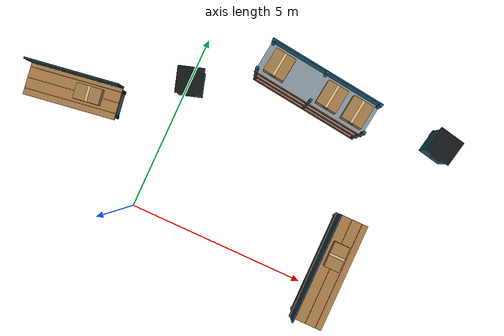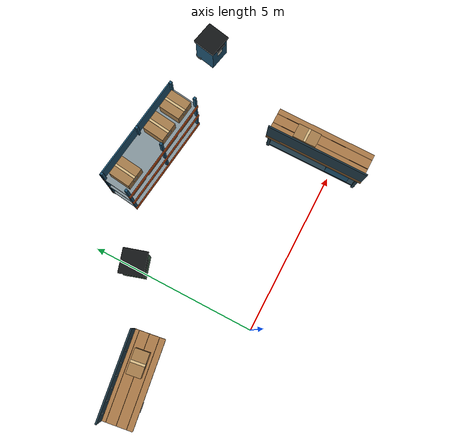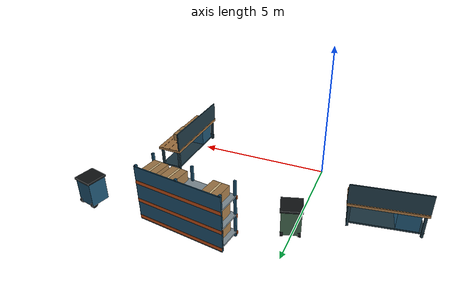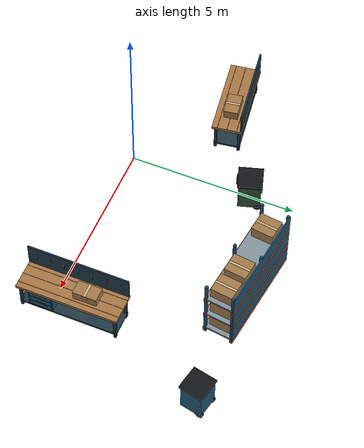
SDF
<sdf version="1.6">
 <world name="go2_workshop">
  <model name="storage_rack_north">
   <static>true</static>
   <pose>3.2 4.8 0 0 0 -0.120000</pose>
   <link name="body">
    <collision name="upright_0_0_collision">
     <pose>-1.55 -0.4 1.05 0 0 0</pose>
     <geometry><box><size>0.075 0.075 2.1</size></box></geometry>
    </collision>
    <visual name="upright_0_0">
     <pose>-1.55 -0.4 1.05 0 0 0</pose>
     <geometry><box><size>0.075 0.075 2.1</size></box></geometry>
     <material>
      <ambient>0.12 0.33 0.45 1</ambient>
      <diffuse>0.12 0.33 0.45 1</diffuse>
      <specular>.08 .08 .08 1</specular>
     </material>
    </visual>
    <collision name="upright_0_1_collision">
     <pose>-1.55 0.4 1.05 0 0 0</pose>
     <geometry><box><size>0.075 0.075 2.1</size></box></geometry>
    </collision>
    <visual name="upright_0_1">
     <pose>-1.55 0.4 1.05 0 0 0</pose>
     <geometry><box><size>0.075 0.075 2.1</size></box></geometry>
     <material>
      <ambient>0.12 0.33 0.45 1</ambient>
      <diffuse>0.12 0.33 0.45 1</diffuse>
      <specular>.08 .08 .08 1</specular>
     </material>
    </visual>
    <collision name="upright_1_0_collision">
     <pose>0 -0.4 1.05 0 0 0</pose>
     <geometry><box><size>0.075 0.075 2.1</size></box></geometry>
    </collision>
    <visual name="upright_1_0">
     <pose>0 -0.4 1.05 0 0 0</pose>
     <geometry><box><size>0.075 0.075 2.1</size></box></geometry>
     <material>
      <ambient>0.12 0.33 0.45 1</ambient>
      <diffuse>0.12 0.33 0.45 1</diffuse>
      <specular>.08 .08 .08 1</specular>
     </material>
    </visual>
    <collision name="upright_1_1_collision">
     <pose>0 0.4 1.05 0 0 0</pose>
     <geometry><box><size>0.075 0.075 2.1</size></box></geometry>
    </collision>
    <visual name="upright_1_1">
     <pose>0 0.4 1.05 0 0 0</pose>
     <geometry><box><size>0.075 0.075 2.1</size></box></geometry>
     <material>
      <ambient>0.12 0.33 0.45 1</ambient>
      <diffuse>0.12 0.33 0.45 1</diffuse>
      <specular>.08 .08 .08 1</specular>
     </material>
    </visual>
    <collision name="upright_2_0_collision">
     <pose>1.55 -0.4 1.05 0 0 0</pose>
     <geometry><box><size>0.075 0.075 2.1</size></box></geometry>
    </collision>
    <visual name="upright_2_0">
     <pose>1.55 -0.4 1.05 0 0 0</pose>
     <geometry><box><size>0.075 0.075 2.1</size></box></geometry>
     <material>
      <ambient>0.12 0.33 0.45 1</ambient>
      <diffuse>0.12 0.33 0.45 1</diffuse>
      <specular>.08 .08 .08 1</specular>
     </material>
    </visual>
    <collision name="upright_2_1_collision">
     <pose>1.55 0.4 1.05 0 0 0</pose>
     <geometry><box><size>0.075 0.075 2.1</size></box></geometry>
    </collision>
    <visual name="upright_2_1">
     <pose>1.55 0.4 1.05 0 0 0</pose>
     <geometry><box><size>0.075 0.075 2.1</size></box></geometry>
     <material>
      <ambient>0.12 0.33 0.45 1</ambient>
      <diffuse>0.12 0.33 0.45 1</diffuse>
      <specular>.08 .08 .08 1</specular>
     </material>
    </visual>
    <collision name="shelf_0_collision">
     <pose>0 0 0.18 0 0 0</pose>
     <geometry><box><size>3.18 0.87 0.055</size></box></geometry>
    </collision>
    <visual name="shelf_0">
     <pose>0 0 0.18 0 0 0</pose>
     <geometry><box><size>3.18 0.87 0.055</size></box></geometry>
     <material>
      <ambient>0.52 0.58 0.61 1</ambient>
      <diffuse>0.52 0.58 0.61 1</diffuse>
      <specular>.08 .08 .08 1</specular>
     </material>
    </visual>
    <collision name="beam_0_0_collision">
     <pose>0 -0.43 0.115 0 0 0</pose>
     <geometry><box><size>3.2 0.055 0.13</size></box></geometry>
    </collision>
    <visual name="beam_0_0">
     <pose>0 -0.43 0.115 0 0 0</pose>
     <geometry><box><size>3.2 0.055 0.13</size></box></geometry>
     <material>
      <ambient>0.78 0.32 0.1 1</ambient>
      <diffuse>0.78 0.32 0.1 1</diffuse>
      <specular>.08 .08 .08 1</specular>
     </material>
    </visual>
    <collision name="beam_0_1_collision">
     <pose>0 0.43 0.115 0 0 0</pose>
     <geometry><box><size>3.2 0.055 0.13</size></box></geometry>
    </collision>
    <visual name="beam_0_1">
     <pose>0 0.43 0.115 0 0 0</pose>
     <geometry><box><size>3.2 0.055 0.13</size></box></geometry>
     <material>
      <ambient>0.78 0.32 0.1 1</ambient>
      <diffuse>0.78 0.32 0.1 1</diffuse>
      <specular>.08 .08 .08 1</specular>
     </material>
    </visual>
    <collision name="shelf_1_collision">
     <pose>0 0 0.85 0 0 0</pose>
     <geometry><box><size>3.18 0.87 0.055</size></box></geometry>
    </collision>
    <visual name="shelf_1">
     <pose>0 0 0.85 0 0 0</pose>
     <geometry><box><size>3.18 0.87 0.055</size></box></geometry>
     <material>
      <ambient>0.52 0.58 0.61 1</ambient>
      <diffuse>0.52 0.58 0.61 1</diffuse>
      <specular>.08 .08 .08 1</specular>
     </material>
    </visual>
    <collision name="beam_1_0_collision">
     <pose>0 -0.43 0.785 0 0 0</pose>
     <geometry><box><size>3.2 0.055 0.13</size></box></geometry>
    </collision>
    <visual name="beam_1_0">
     <pose>0 -0.43 0.785 0 0 0</pose>
     <geometry><box><size>3.2 0.055 0.13</size></box></geometry>
     <material>
      <ambient>0.78 0.32 0.1 1</ambient>
      <diffuse>0.78 0.32 0.1 1</diffuse>
      <specular>.08 .08 .08 1</specular>
     </material>
    </visual>
    <collision name="beam_1_1_collision">
     <pose>0 0.43 0.785 0 0 0</pose>
     <geometry><box><size>3.2 0.055 0.13</size></box></geometry>
    </collision>
    <visual name="beam_1_1">
     <pose>0 0.43 0.785 0 0 0</pose>
     <geometry><box><size>3.2 0.055 0.13</size></box></geometry>
     <material>
      <ambient>0.78 0.32 0.1 1</ambient>
      <diffuse>0.78 0.32 0.1 1</diffuse>
      <specular>.08 .08 .08 1</specular>
     </material>
    </visual>
    <collision name="shelf_2_collision">
     <pose>0 0 1.55 0 0 0</pose>
     <geometry><box><size>3.18 0.87 0.055</size></box></geometry>
    </collision>
    <visual name="shelf_2">
     <pose>0 0 1.55 0 0 0</pose>
     <geometry><box><size>3.18 0.87 0.055</size></box></geometry>
     <material>
      <ambient>0.52 0.58 0.61 1</ambient>
      <diffuse>0.52 0.58 0.61 1</diffuse>
      <specular>.08 .08 .08 1</specular>
     </material>
    </visual>
    <collision name="beam_2_0_collision">
     <pose>0 -0.43 1.485 0 0 0</pose>
     <geometry><box><size>3.2 0.055 0.13</size></box></geometry>
    </collision>
    <visual name="beam_2_0">
     <pose>0 -0.43 1.485 0 0 0</pose>
     <geometry><box><size>3.2 0.055 0.13</size></box></geometry>
     <material>
      <ambient>0.78 0.32 0.1 1</ambient>
      <diffuse>0.78 0.32 0.1 1</diffuse>
      <specular>.08 .08 .08 1</specular>
     </material>
    </visual>
    <collision name="beam_2_1_collision">
     <pose>0 0.43 1.485 0 0 0</pose>
     <geometry><box><size>3.2 0.055 0.13</size></box></geometry>
    </collision>
    <visual name="beam_2_1">
     <pose>0 0.43 1.485 0 0 0</pose>
     <geometry><box><size>3.2 0.055 0.13</size></box></geometry>
     <material>
      <ambient>0.78 0.32 0.1 1</ambient>
      <diffuse>0.78 0.32 0.1 1</diffuse>
      <specular>.08 .08 .08 1</specular>
     </material>
    </visual>
    <collision name="back_panel_collision">
     <pose>0 0.435 1.04 0 0 0</pose>
     <geometry><box><size>3.2 0.035 2.04</size></box></geometry>
    </collision>
    <visual name="back_panel">
     <pose>0 0.435 1.04 0 0 0</pose>
     <geometry><box><size>3.2 0.035 2.04</size></box></geometry>
     <material>
      <ambient>0.12 0.33 0.45 1</ambient>
      <diffuse>0.12 0.33 0.45 1</diffuse>
      <specular>.08 .08 .08 1</specular>
     </material>
    </visual>
    <collision name="box_0_0_collision">
     <pose>-1.12 -0.015 0.418 0 0 0</pose>
     <geometry><box><size>0.58 0.64 0.42</size></box></geometry>
    </collision>
    <visual name="box_0_0">
     <pose>-1.12 -0.015 0.418 0 0 0</pose>
     <geometry><box><size>0.58 0.64 0.42</size></box></geometry>
     <material>
      <ambient>0.64 0.48 0.29 1</ambient>
      <diffuse>0.64 0.48 0.29 1</diffuse>
      <specular>.08 .08 .08 1</specular>
     </material>
    </visual>
    <visual name="box_0_0_tape">
     <pose>-1.12 -0.015 0.629 0 0 0</pose>
     <geometry><box><size>0.07 0.64 0.002</size></box></geometry>
     <material>
      <ambient>0.83 0.72 0.51 1</ambient>
      <diffuse>0.83 0.72 0.51 1</diffuse>
      <specular>.08 .08 .08 1</specular>
     </material>
     <cast_shadows>false</cast_shadows>
    </visual>
    <visual name="box_0_0_label">
     <pose>-1.12 -0.337 0.481 0 0 0</pose>
     <geometry><box><size>0.174 0.003 0.0966</size></box></geometry>
     <material>
      <ambient>0.9 0.89 0.82 1</ambient>
      <diffuse>0.9 0.89 0.82 1</diffuse>
      <specular>.08 .08 .08 1</specular>
     </material>
     <cast_shadows>false</cast_shadows>
    </visual>
    <collision name="box_0_1_collision">
     <pose>-0.4 -0.015 0.418 0 0 0</pose>
     <geometry><box><size>0.58 0.64 0.42</size></box></geometry>
    </collision>
    <visual name="box_0_1">
     <pose>-0.4 -0.015 0.418 0 0 0</pose>
     <geometry><box><size>0.58 0.64 0.42</size></box></geometry>
     <material>
      <ambient>0.64 0.48 0.29 1</ambient>
      <diffuse>0.64 0.48 0.29 1</diffuse>
      <specular>.08 .08 .08 1</specular>
     </material>
    </visual>
    <visual name="box_0_1_tape">
     <pose>-0.4 -0.015 0.629 0 0 0</pose>
     <geometry><box><size>0.07 0.64 0.002</size></box></geometry>
     <material>
      <ambient>0.83 0.72 0.51 1</ambient>
      <diffuse>0.83 0.72 0.51 1</diffuse>
      <specular>.08 .08 .08 1</specular>
     </material>
     <cast_shadows>false</cast_shadows>
    </visual>
    <visual name="box_0_1_label">
     <pose>-0.4 -0.337 0.481 0 0 0</pose>
     <geometry><box><size>0.174 0.003 0.0966</size></box></geometry>
     <material>
      <ambient>0.9 0.89 0.82 1</ambient>
      <diffuse>0.9 0.89 0.82 1</diffuse>
      <specular>.08 .08 .08 1</specular>
     </material>
     <cast_shadows>false</cast_shadows>
    </visual>
    <collision name="box_0_2_collision">
     <pose>0.42 -0.015 0.418 0 0 0</pose>
     <geometry><box><size>0.58 0.64 0.42</size></box></geometry>
    </collision>
    <visual name="box_0_2">
     <pose>0.42 -0.015 0.418 0 0 0</pose>
     <geometry><box><size>0.58 0.64 0.42</size></box></geometry>
     <material>
      <ambient>0.64 0.48 0.29 1</ambient>
      <diffuse>0.64 0.48 0.29 1</diffuse>
      <specular>.08 .08 .08 1</specular>
     </material>
    </visual>
    <visual name="box_0_2_tape">
     <pose>0.42 -0.015 0.629 0 0 0</pose>
     <geometry><box><size>0.07 0.64 0.002</size></box></geometry>
     <material>
      <ambient>0.83 0.72 0.51 1</ambient>
      <diffuse>0.83 0.72 0.51 1</diffuse>
      <specular>.08 .08 .08 1</specular>
     </material>
     <cast_shadows>false</cast_shadows>
    </visual>
    <visual name="box_0_2_label">
     <pose>0.42 -0.337 0.481 0 0 0</pose>
     <geometry><box><size>0.174 0.003 0.0966</size></box></geometry>
     <material>
      <ambient>0.9 0.89 0.82 1</ambient>
      <diffuse>0.9 0.89 0.82 1</diffuse>
      <specular>.08 .08 .08 1</specular>
     </material>
     <cast_shadows>false</cast_shadows>
    </visual>
    <collision name="box_0_3_collision">
     <pose>1.16 -0.015 0.418 0 0 0</pose>
     <geometry><box><size>0.58 0.64 0.42</size></box></geometry>
    </collision>
    <visual name="box_0_3">
     <pose>1.16 -0.015 0.418 0 0 0</pose>
     <geometry><box><size>0.58 0.64 0.42</size></box></geometry>
     <material>
      <ambient>0.64 0.48 0.29 1</ambient>
      <diffuse>0.64 0.48 0.29 1</diffuse>
      <specular>.08 .08 .08 1</specular>
     </material>
    </visual>
    <visual name="box_0_3_tape">
     <pose>1.16 -0.015 0.629 0 0 0</pose>
     <geometry><box><size>0.07 0.64 0.002</size></box></geometry>
     <material>
      <ambient>0.83 0.72 0.51 1</ambient>
      <diffuse>0.83 0.72 0.51 1</diffuse>
      <specular>.08 .08 .08 1</specular>
     </material>
     <cast_shadows>false</cast_shadows>
    </visual>
    <visual name="box_0_3_label">
     <pose>1.16 -0.337 0.481 0 0 0</pose>
     <geometry><box><size>0.174 0.003 0.0966</size></box></geometry>
     <material>
      <ambient>0.9 0.89 0.82 1</ambient>
      <diffuse>0.9 0.89 0.82 1</diffuse>
      <specular>.08 .08 .08 1</specular>
     </material>
     <cast_shadows>false</cast_shadows>
    </visual>
    <collision name="box_1_0_collision">
     <pose>-1.12 -0.015 1.088 0 0 0</pose>
     <geometry><box><size>0.58 0.64 0.42</size></box></geometry>
    </collision>
    <visual name="box_1_0">
     <pose>-1.12 -0.015 1.088 0 0 0</pose>
     <geometry><box><size>0.58 0.64 0.42</size></box></geometry>
     <material>
      <ambient>0.64 0.48 0.29 1</ambient>
      <diffuse>0.64 0.48 0.29 1</diffuse>
      <specular>.08 .08 .08 1</specular>
     </material>
    </visual>
    <visual name="box_1_0_tape">
     <pose>-1.12 -0.015 1.299 0 0 0</pose>
     <geometry><box><size>0.07 0.64 0.002</size></box></geometry>
     <material>
      <ambient>0.83 0.72 0.51 1</ambient>
      <diffuse>0.83 0.72 0.51 1</diffuse>
      <specular>.08 .08 .08 1</specular>
     </material>
     <cast_shadows>false</cast_shadows>
    </visual>
    <visual name="box_1_0_label">
     <pose>-1.12 -0.337 1.151 0 0 0</pose>
     <geometry><box><size>0.174 0.003 0.0966</size></box></geometry>
     <material>
      <ambient>0.9 0.89 0.82 1</ambient>
      <diffuse>0.9 0.89 0.82 1</diffuse>
      <specular>.08 .08 .08 1</specular>
     </material>
     <cast_shadows>false</cast_shadows>
    </visual>
    <collision name="box_1_1_collision">
     <pose>-0.4 -0.015 1.088 0 0 0</pose>
     <geometry><box><size>0.58 0.64 0.42</size></box></geometry>
    </collision>
    <visual name="box_1_1">
     <pose>-0.4 -0.015 1.088 0 0 0</pose>
     <geometry><box><size>0.58 0.64 0.42</size></box></geometry>
     <material>
      <ambient>0.64 0.48 0.29 1</ambient>
      <diffuse>0.64 0.48 0.29 1</diffuse>
      <specular>.08 .08 .08 1</specular>
     </material>
    </visual>
    <visual name="box_1_1_tape">
     <pose>-0.4 -0.015 1.299 0 0 0</pose>
     <geometry><box><size>0.07 0.64 0.002</size></box></geometry>
     <material>
      <ambient>0.83 0.72 0.51 1</ambient>
      <diffuse>0.83 0.72 0.51 1</diffuse>
      <specular>.08 .08 .08 1</specular>
     </material>
     <cast_shadows>false</cast_shadows>
    </visual>
    <visual name="box_1_1_label">
     <pose>-0.4 -0.337 1.151 0 0 0</pose>
     <geometry><box><size>0.174 0.003 0.0966</size></box></geometry>
     <material>
      <ambient>0.9 0.89 0.82 1</ambient>
      <diffuse>0.9 0.89 0.82 1</diffuse>
      <specular>.08 .08 .08 1</specular>
     </material>
     <cast_shadows>false</cast_shadows>
    </visual>
    <collision name="box_1_2_collision">
     <pose>0.42 -0.015 1.088 0 0 0</pose>
     <geometry><box><size>0.58 0.64 0.42</size></box></geometry>
    </collision>
    <visual name="box_1_2">
     <pose>0.42 -0.015 1.088 0 0 0</pose>
     <geometry><box><size>0.58 0.64 0.42</size></box></geometry>
     <material>
      <ambient>0.64 0.48 0.29 1</ambient>
      <diffuse>0.64 0.48 0.29 1</diffuse>
      <specular>.08 .08 .08 1</specular>
     </material>
    </visual>
    <visual name="box_1_2_tape">
     <pose>0.42 -0.015 1.299 0 0 0</pose>
     <geometry><box><size>0.07 0.64 0.002</size></box></geometry>
     <material>
      <ambient>0.83 0.72 0.51 1</ambient>
      <diffuse>0.83 0.72 0.51 1</diffuse>
      <specular>.08 .08 .08 1</specular>
     </material>
     <cast_shadows>false</cast_shadows>
    </visual>
    <visual name="box_1_2_label">
     <pose>0.42 -0.337 1.151 0 0 0</pose>
     <geometry><box><size>0.174 0.003 0.0966</size></box></geometry>
     <material>
      <ambient>0.9 0.89 0.82 1</ambient>
      <diffuse>0.9 0.89 0.82 1</diffuse>
      <specular>.08 .08 .08 1</specular>
     </material>
     <cast_shadows>false</cast_shadows>
    </visual>
    <collision name="box_1_3_collision">
     <pose>1.16 -0.015 1.088 0 0 0</pose>
     <geometry><box><size>0.58 0.64 0.42</size></box></geometry>
    </collision>
    <visual name="box_1_3">
     <pose>1.16 -0.015 1.088 0 0 0</pose>
     <geometry><box><size>0.58 0.64 0.42</size></box></geometry>
     <material>
      <ambient>0.64 0.48 0.29 1</ambient>
      <diffuse>0.64 0.48 0.29 1</diffuse>
      <specular>.08 .08 .08 1</specular>
     </material>
    </visual>
    <visual name="box_1_3_tape">
     <pose>1.16 -0.015 1.299 0 0 0</pose>
     <geometry><box><size>0.07 0.64 0.002</size></box></geometry>
     <material>
      <ambient>0.83 0.72 0.51 1</ambient>
      <diffuse>0.83 0.72 0.51 1</diffuse>
      <specular>.08 .08 .08 1</specular>
     </material>
     <cast_shadows>false</cast_shadows>
    </visual>
    <visual name="box_1_3_label">
     <pose>1.16 -0.337 1.151 0 0 0</pose>
     <geometry><box><size>0.174 0.003 0.0966</size></box></geometry>
     <material>
      <ambient>0.9 0.89 0.82 1</ambient>
      <diffuse>0.9 0.89 0.82 1</diffuse>
      <specular>.08 .08 .08 1</specular>
     </material>
     <cast_shadows>false</cast_shadows>
    </visual>
    <collision name="box_2_0_collision">
     <pose>-1.12 -0.015 1.748 0 0 0</pose>
     <geometry><box><size>0.58 0.64 0.34</size></box></geometry>
    </collision>
    <visual name="box_2_0">
     <pose>-1.12 -0.015 1.748 0 0 0</pose>
     <geometry><box><size>0.58 0.64 0.34</size></box></geometry>
     <material>
      <ambient>0.64 0.48 0.29 1</ambient>
      <diffuse>0.64 0.48 0.29 1</diffuse>
      <specular>.08 .08 .08 1</specular>
     </material>
    </visual>
    <visual name="box_2_0_tape">
     <pose>-1.12 -0.015 1.919 0 0 0</pose>
     <geometry><box><size>0.07 0.64 0.002</size></box></geometry>
     <material>
      <ambient>0.83 0.72 0.51 1</ambient>
      <diffuse>0.83 0.72 0.51 1</diffuse>
      <specular>.08 .08 .08 1</specular>
     </material>
     <cast_shadows>false</cast_shadows>
    </visual>
    <visual name="box_2_0_label">
     <pose>-1.12 -0.337 1.799 0 0 0</pose>
     <geometry><box><size>0.174 0.003 0.0782</size></box></geometry>
     <material>
      <ambient>0.9 0.89 0.82 1</ambient>
      <diffuse>0.9 0.89 0.82 1</diffuse>
      <specular>.08 .08 .08 1</specular>
     </material>
     <cast_shadows>false</cast_shadows>
    </visual>
    <collision name="box_2_2_collision">
     <pose>0.42 -0.015 1.748 0 0 0</pose>
     <geometry><box><size>0.58 0.64 0.34</size></box></geometry>
    </collision>
    <visual name="box_2_2">
     <pose>0.42 -0.015 1.748 0 0 0</pose>
     <geometry><box><size>0.58 0.64 0.34</size></box></geometry>
     <material>
      <ambient>0.64 0.48 0.29 1</ambient>
      <diffuse>0.64 0.48 0.29 1</diffuse>
      <specular>.08 .08 .08 1</specular>
     </material>
    </visual>
    <visual name="box_2_2_tape">
     <pose>0.42 -0.015 1.919 0 0 0</pose>
     <geometry><box><size>0.07 0.64 0.002</size></box></geometry>
     <material>
      <ambient>0.83 0.72 0.51 1</ambient>
      <diffuse>0.83 0.72 0.51 1</diffuse>
      <specular>.08 .08 .08 1</specular>
     </material>
     <cast_shadows>false</cast_shadows>
    </visual>
    <visual name="box_2_2_label">
     <pose>0.42 -0.337 1.799 0 0 0</pose>
     <geometry><box><size>0.174 0.003 0.0782</size></box></geometry>
     <material>
      <ambient>0.9 0.89 0.82 1</ambient>
      <diffuse>0.9 0.89 0.82 1</diffuse>
      <specular>.08 .08 .08 1</specular>
     </material>
     <cast_shadows>false</cast_shadows>
    </visual>
    <collision name="box_2_3_collision">
     <pose>1.16 -0.015 1.748 0 0 0</pose>
     <geometry><box><size>0.58 0.64 0.34</size></box></geometry>
    </collision>
    <visual name="box_2_3">
     <pose>1.16 -0.015 1.748 0 0 0</pose>
     <geometry><box><size>0.58 0.64 0.34</size></box></geometry>
     <material>
      <ambient>0.64 0.48 0.29 1</ambient>
      <diffuse>0.64 0.48 0.29 1</diffuse>
      <specular>.08 .08 .08 1</specular>
     </material>
    </visual>
    <visual name="box_2_3_tape">
     <pose>1.16 -0.015 1.919 0 0 0</pose>
     <geometry><box><size>0.07 0.64 0.002</size></box></geometry>
     <material>
      <ambient>0.83 0.72 0.51 1</ambient>
      <diffuse>0.83 0.72 0.51 1</diffuse>
      <specular>.08 .08 .08 1</specular>
     </material>
     <cast_shadows>false</cast_shadows>
    </visual>
    <visual name="box_2_3_label">
     <pose>1.16 -0.337 1.799 0 0 0</pose>
     <geometry><box><size>0.174 0.003 0.0782</size></box></geometry>
     <material>
      <ambient>0.9 0.89 0.82 1</ambient>
      <diffuse>0.9 0.89 0.82 1</diffuse>
      <specular>.08 .08 .08 1</specular>
     </material>
     <cast_shadows>false</cast_shadows>
    </visual>
   </link>
  </model>
  <model name="repair_workbench">
   <static>true</static>
   <pose>5.5 0.65 0 0 0 1.570796</pose>
   <link name="body">
    <collision name="worktop_collision">
     <pose>0 0 0.89 0 0 0</pose>
     <geometry><box><size>3 0.92 0.09</size></box></geometry>
    </collision>
    <visual name="worktop">
     <pose>0 0 0.89 0 0 0</pose>
     <geometry><box><size>3 0.92 0.09</size></box></geometry>
     <material>
      <ambient>0.66 0.47 0.27 1</ambient>
      <diffuse>0.66 0.47 0.27 1</diffuse>
      <specular>.08 .08 .08 1</specular>
     </material>
    </visual>
    <visual name="plank_seam_0">
     <pose>0 -0.29 0.936 0 0 0</pose>
     <geometry><box><size>3 0.008 0.002</size></box></geometry>
     <material>
      <ambient>0.39 0.24 0.12 1</ambient>
      <diffuse>0.39 0.24 0.12 1</diffuse>
      <specular>.08 .08 .08 1</specular>
     </material>
     <cast_shadows>false</cast_shadows>
    </visual>
    <visual name="plank_seam_1">
     <pose>0 0 0.936 0 0 0</pose>
     <geometry><box><size>3 0.008 0.002</size></box></geometry>
     <material>
      <ambient>0.39 0.24 0.12 1</ambient>
      <diffuse>0.39 0.24 0.12 1</diffuse>
      <specular>.08 .08 .08 1</specular>
     </material>
     <cast_shadows>false</cast_shadows>
    </visual>
    <visual name="plank_seam_2">
     <pose>0 0.29 0.936 0 0 0</pose>
     <geometry><box><size>3 0.008 0.002</size></box></geometry>
     <material>
      <ambient>0.39 0.24 0.12 1</ambient>
      <diffuse>0.39 0.24 0.12 1</diffuse>
      <specular>.08 .08 .08 1</specular>
     </material>
     <cast_shadows>false</cast_shadows>
    </visual>
    <collision name="leg_0_0_collision">
     <pose>-1.4 -0.35 0.425 0 0 0</pose>
     <geometry><box><size>0.08 0.08 0.85</size></box></geometry>
    </collision>
    <visual name="leg_0_0">
     <pose>-1.4 -0.35 0.425 0 0 0</pose>
     <geometry><box><size>0.08 0.08 0.85</size></box></geometry>
     <material>
      <ambient>0.12 0.22 0.27 1</ambient>
      <diffuse>0.12 0.22 0.27 1</diffuse>
      <specular>.08 .08 .08 1</specular>
     </material>
    </visual>
    <collision name="leg_0_1_collision">
     <pose>-1.4 0.35 0.425 0 0 0</pose>
     <geometry><box><size>0.08 0.08 0.85</size></box></geometry>
    </collision>
    <visual name="leg_0_1">
     <pose>-1.4 0.35 0.425 0 0 0</pose>
     <geometry><box><size>0.08 0.08 0.85</size></box></geometry>
     <material>
      <ambient>0.12 0.22 0.27 1</ambient>
      <diffuse>0.12 0.22 0.27 1</diffuse>
      <specular>.08 .08 .08 1</specular>
     </material>
    </visual>
    <collision name="leg_1_0_collision">
     <pose>1.4 -0.35 0.425 0 0 0</pose>
     <geometry><box><size>0.08 0.08 0.85</size></box></geometry>
    </collision>
    <visual name="leg_1_0">
     <pose>1.4 -0.35 0.425 0 0 0</pose>
     <geometry><box><size>0.08 0.08 0.85</size></box></geometry>
     <material>
      <ambient>0.12 0.22 0.27 1</ambient>
      <diffuse>0.12 0.22 0.27 1</diffuse>
      <specular>.08 .08 .08 1</specular>
     </material>
    </visual>
    <collision name="leg_1_1_collision">
     <pose>1.4 0.35 0.425 0 0 0</pose>
     <geometry><box><size>0.08 0.08 0.85</size></box></geometry>
    </collision>
    <visual name="leg_1_1">
     <pose>1.4 0.35 0.425 0 0 0</pose>
     <geometry><box><size>0.08 0.08 0.85</size></box></geometry>
     <material>
      <ambient>0.12 0.22 0.27 1</ambient>
      <diffuse>0.12 0.22 0.27 1</diffuse>
      <specular>.08 .08 .08 1</specular>
     </material>
    </visual>
    <collision name="lower_shelf_collision">
     <pose>0 0 0.17 0 0 0</pose>
     <geometry><box><size>2.9 0.78 0.06</size></box></geometry>
    </collision>
    <visual name="lower_shelf">
     <pose>0 0 0.17 0 0 0</pose>
     <geometry><box><size>2.9 0.78 0.06</size></box></geometry>
     <material>
      <ambient>0.12 0.22 0.27 1</ambient>
      <diffuse>0.12 0.22 0.27 1</diffuse>
      <specular>.08 .08 .08 1</specular>
     </material>
    </visual>
    <collision name="drawer_cabinet_collision">
     <pose>-0.81 0 0.52 0 0 0</pose>
     <geometry><box><size>0.72 0.77 0.65</size></box></geometry>
    </collision>
    <visual name="drawer_cabinet">
     <pose>-0.81 0 0.52 0 0 0</pose>
     <geometry><box><size>0.72 0.77 0.65</size></box></geometry>
     <material>
      <ambient>0.12 0.33 0.45 1</ambient>
      <diffuse>0.12 0.33 0.45 1</diffuse>
      <specular>.08 .08 .08 1</specular>
     </material>
    </visual>
    <visual name="drawer_0">
     <pose>-0.81 -0.393 0.32 0 0 0</pose>
     <geometry><box><size>0.66 0.022 0.17</size></box></geometry>
     <material>
      <ambient>0.12 0.33 0.45 1</ambient>
      <diffuse>0.12 0.33 0.45 1</diffuse>
      <specular>.08 .08 .08 1</specular>
     </material>
     <cast_shadows>false</cast_shadows>
    </visual>
    <visual name="handle_0">
     <pose>-0.81 -0.419 0.32 0 0 0</pose>
     <geometry><box><size>0.28 0.025 0.018</size></box></geometry>
     <material>
      <ambient>0.52 0.58 0.61 1</ambient>
      <diffuse>0.52 0.58 0.61 1</diffuse>
      <specular>.08 .08 .08 1</specular>
     </material>
     <cast_shadows>false</cast_shadows>
    </visual>
    <visual name="drawer_1">
     <pose>-0.81 -0.393 0.51 0 0 0</pose>
     <geometry><box><size>0.66 0.022 0.17</size></box></geometry>
     <material>
      <ambient>0.12 0.33 0.45 1</ambient>
      <diffuse>0.12 0.33 0.45 1</diffuse>
      <specular>.08 .08 .08 1</specular>
     </material>
     <cast_shadows>false</cast_shadows>
    </visual>
    <visual name="handle_1">
     <pose>-0.81 -0.419 0.51 0 0 0</pose>
     <geometry><box><size>0.28 0.025 0.018</size></box></geometry>
     <material>
      <ambient>0.52 0.58 0.61 1</ambient>
      <diffuse>0.52 0.58 0.61 1</diffuse>
      <specular>.08 .08 .08 1</specular>
     </material>
     <cast_shadows>false</cast_shadows>
    </visual>
    <visual name="drawer_2">
     <pose>-0.81 -0.393 0.7 0 0 0</pose>
     <geometry><box><size>0.66 0.022 0.17</size></box></geometry>
     <material>
      <ambient>0.12 0.33 0.45 1</ambient>
      <diffuse>0.12 0.33 0.45 1</diffuse>
      <specular>.08 .08 .08 1</specular>
     </material>
     <cast_shadows>false</cast_shadows>
    </visual>
    <visual name="handle_2">
     <pose>-0.81 -0.419 0.7 0 0 0</pose>
     <geometry><box><size>0.28 0.025 0.018</size></box></geometry>
     <material>
      <ambient>0.52 0.58 0.61 1</ambient>
      <diffuse>0.52 0.58 0.61 1</diffuse>
      <specular>.08 .08 .08 1</specular>
     </material>
     <cast_shadows>false</cast_shadows>
    </visual>
    <collision name="tool_case_collision">
     <pose>0.45 0 1.07 0 0 0</pose>
     <geometry><box><size>0.7 0.42 0.27</size></box></geometry>
    </collision>
    <visual name="tool_case">
     <pose>0.45 0 1.07 0 0 0</pose>
     <geometry><box><size>0.7 0.42 0.27</size></box></geometry>
     <material>
      <ambient>0.64 0.48 0.29 1</ambient>
      <diffuse>0.64 0.48 0.29 1</diffuse>
      <specular>.08 .08 .08 1</specular>
     </material>
    </visual>
    <visual name="tool_case_tape">
     <pose>0.45 0 1.206 0 0 0</pose>
     <geometry><box><size>0.07 0.42 0.002</size></box></geometry>
     <material>
      <ambient>0.83 0.72 0.51 1</ambient>
      <diffuse>0.83 0.72 0.51 1</diffuse>
      <specular>.08 .08 .08 1</specular>
     </material>
     <cast_shadows>false</cast_shadows>
    </visual>
    <visual name="tool_case_label">
     <pose>0.45 -0.212 1.1105 0 0 0</pose>
     <geometry><box><size>0.21 0.003 0.0621</size></box></geometry>
     <material>
      <ambient>0.9 0.89 0.82 1</ambient>
      <diffuse>0.9 0.89 0.82 1</diffuse>
      <specular>.08 .08 .08 1</specular>
     </material>
     <cast_shadows>false</cast_shadows>
    </visual>
    <collision name="tool_board_collision">
     <pose>0 0.42 1.3 0 0 0</pose>
     <geometry><box><size>3 0.045 0.7</size></box></geometry>
    </collision>
    <visual name="tool_board">
     <pose>0 0.42 1.3 0 0 0</pose>
     <geometry><box><size>3 0.045 0.7</size></box></geometry>
     <material>
      <ambient>0.12 0.22 0.27 1</ambient>
      <diffuse>0.12 0.22 0.27 1</diffuse>
      <specular>.08 .08 .08 1</specular>
     </material>
    </visual>
    <visual name="tool_0">
     <pose>-1.25 0.39 1.3 0 0 0</pose>
     <geometry><box><size>0.025 0.035 0.2</size></box></geometry>
     <material>
      <ambient>0.52 0.58 0.61 1</ambient>
      <diffuse>0.52 0.58 0.61 1</diffuse>
      <specular>.08 .08 .08 1</specular>
     </material>
     <cast_shadows>false</cast_shadows>
    </visual>
    <visual name="tool_1">
     <pose>-0.83333 0.39 1.3 0 0 0</pose>
     <geometry><box><size>0.025 0.035 0.28</size></box></geometry>
     <material>
      <ambient>0.52 0.58 0.61 1</ambient>
      <diffuse>0.52 0.58 0.61 1</diffuse>
      <specular>.08 .08 .08 1</specular>
     </material>
     <cast_shadows>false</cast_shadows>
    </visual>
    <visual name="tool_2">
     <pose>-0.41667 0.39 1.3 0 0 0</pose>
     <geometry><box><size>0.025 0.035 0.2</size></box></geometry>
     <material>
      <ambient>0.52 0.58 0.61 1</ambient>
      <diffuse>0.52 0.58 0.61 1</diffuse>
      <specular>.08 .08 .08 1</specular>
     </material>
     <cast_shadows>false</cast_shadows>
    </visual>
    <visual name="tool_3">
     <pose>0 0.39 1.3 0 0 0</pose>
     <geometry><box><size>0.025 0.035 0.28</size></box></geometry>
     <material>
      <ambient>0.52 0.58 0.61 1</ambient>
      <diffuse>0.52 0.58 0.61 1</diffuse>
      <specular>.08 .08 .08 1</specular>
     </material>
     <cast_shadows>false</cast_shadows>
    </visual>
    <visual name="tool_4">
     <pose>0.41667 0.39 1.3 0 0 0</pose>
     <geometry><box><size>0.025 0.035 0.2</size></box></geometry>
     <material>
      <ambient>0.52 0.58 0.61 1</ambient>
      <diffuse>0.52 0.58 0.61 1</diffuse>
      <specular>.08 .08 .08 1</specular>
     </material>
     <cast_shadows>false</cast_shadows>
    </visual>
    <visual name="tool_5">
     <pose>0.83333 0.39 1.3 0 0 0</pose>
     <geometry><box><size>0.025 0.035 0.28</size></box></geometry>
     <material>
      <ambient>0.52 0.58 0.61 1</ambient>
      <diffuse>0.52 0.58 0.61 1</diffuse>
      <specular>.08 .08 .08 1</specular>
     </material>
     <cast_shadows>false</cast_shadows>
    </visual>
    <visual name="tool_6">
     <pose>1.25 0.39 1.3 0 0 0</pose>
     <geometry><box><size>0.025 0.035 0.2</size></box></geometry>
     <material>
      <ambient>0.52 0.58 0.61 1</ambient>
      <diffuse>0.52 0.58 0.61 1</diffuse>
      <specular>.08 .08 .08 1</specular>
     </material>
     <cast_shadows>false</cast_shadows>
    </visual>
   </link>
  </model>
  <model name="assembly_bench">
   <static>true</static>
   <pose>-2.6 2.2 0 0 0 0.150000</pose>
   <link name="body">
    <collision name="worktop_collision">
     <pose>0 0 0.89 0 0 0</pose>
     <geometry><box><size>2.5 0.92 0.09</size></box></geometry>
    </collision>
    <visual name="worktop">
     <pose>0 0 0.89 0 0 0</pose>
     <geometry><box><size>2.5 0.92 0.09</size></box></geometry>
     <material>
      <ambient>0.66 0.47 0.27 1</ambient>
      <diffuse>0.66 0.47 0.27 1</diffuse>
      <specular>.08 .08 .08 1</specular>
     </material>
    </visual>
    <visual name="plank_seam_0">
     <pose>0 -0.29 0.936 0 0 0</pose>
     <geometry><box><size>2.5 0.008 0.002</size></box></geometry>
     <material>
      <ambient>0.39 0.24 0.12 1</ambient>
      <diffuse>0.39 0.24 0.12 1</diffuse>
      <specular>.08 .08 .08 1</specular>
     </material>
     <cast_shadows>false</cast_shadows>
    </visual>
    <visual name="plank_seam_1">
     <pose>0 0 0.936 0 0 0</pose>
     <geometry><box><size>2.5 0.008 0.002</size></box></geometry>
     <material>
      <ambient>0.39 0.24 0.12 1</ambient>
      <diffuse>0.39 0.24 0.12 1</diffuse>
      <specular>.08 .08 .08 1</specular>
     </material>
     <cast_shadows>false</cast_shadows>
    </visual>
    <visual name="plank_seam_2">
     <pose>0 0.29 0.936 0 0 0</pose>
     <geometry><box><size>2.5 0.008 0.002</size></box></geometry>
     <material>
      <ambient>0.39 0.24 0.12 1</ambient>
      <diffuse>0.39 0.24 0.12 1</diffuse>
      <specular>.08 .08 .08 1</specular>
     </material>
     <cast_shadows>false</cast_shadows>
    </visual>
    <collision name="leg_0_0_collision">
     <pose>-1.15 -0.35 0.425 0 0 0</pose>
     <geometry><box><size>0.08 0.08 0.85</size></box></geometry>
    </collision>
    <visual name="leg_0_0">
     <pose>-1.15 -0.35 0.425 0 0 0</pose>
     <geometry><box><size>0.08 0.08 0.85</size></box></geometry>
     <material>
      <ambient>0.12 0.22 0.27 1</ambient>
      <diffuse>0.12 0.22 0.27 1</diffuse>
      <specular>.08 .08 .08 1</specular>
     </material>
    </visual>
    <collision name="leg_0_1_collision">
     <pose>-1.15 0.35 0.425 0 0 0</pose>
     <geometry><box><size>0.08 0.08 0.85</size></box></geometry>
    </collision>
    <visual name="leg_0_1">
     <pose>-1.15 0.35 0.425 0 0 0</pose>
     <geometry><box><size>0.08 0.08 0.85</size></box></geometry>
     <material>
      <ambient>0.12 0.22 0.27 1</ambient>
      <diffuse>0.12 0.22 0.27 1</diffuse>
      <specular>.08 .08 .08 1</specular>
     </material>
    </visual>
    <collision name="leg_1_0_collision">
     <pose>1.15 -0.35 0.425 0 0 0</pose>
     <geometry><box><size>0.08 0.08 0.85</size></box></geometry>
    </collision>
    <visual name="leg_1_0">
     <pose>1.15 -0.35 0.425 0 0 0</pose>
     <geometry><box><size>0.08 0.08 0.85</size></box></geometry>
     <material>
      <ambient>0.12 0.22 0.27 1</ambient>
      <diffuse>0.12 0.22 0.27 1</diffuse>
      <specular>.08 .08 .08 1</specular>
     </material>
    </visual>
    <collision name="leg_1_1_collision">
     <pose>1.15 0.35 0.425 0 0 0</pose>
     <geometry><box><size>0.08 0.08 0.85</size></box></geometry>
    </collision>
    <visual name="leg_1_1">
     <pose>1.15 0.35 0.425 0 0 0</pose>
     <geometry><box><size>0.08 0.08 0.85</size></box></geometry>
     <material>
      <ambient>0.12 0.22 0.27 1</ambient>
      <diffuse>0.12 0.22 0.27 1</diffuse>
      <specular>.08 .08 .08 1</specular>
     </material>
    </visual>
    <collision name="lower_shelf_collision">
     <pose>0 0 0.17 0 0 0</pose>
     <geometry><box><size>2.4 0.78 0.06</size></box></geometry>
    </collision>
    <visual name="lower_shelf">
     <pose>0 0 0.17 0 0 0</pose>
     <geometry><box><size>2.4 0.78 0.06</size></box></geometry>
     <material>
      <ambient>0.12 0.22 0.27 1</ambient>
      <diffuse>0.12 0.22 0.27 1</diffuse>
      <specular>.08 .08 .08 1</specular>
     </material>
    </visual>
    <collision name="drawer_cabinet_collision">
     <pose>-0.675 0 0.52 0 0 0</pose>
     <geometry><box><size>0.72 0.77 0.65</size></box></geometry>
    </collision>
    <visual name="drawer_cabinet">
     <pose>-0.675 0 0.52 0 0 0</pose>
     <geometry><box><size>0.72 0.77 0.65</size></box></geometry>
     <material>
      <ambient>0.12 0.33 0.45 1</ambient>
      <diffuse>0.12 0.33 0.45 1</diffuse>
      <specular>.08 .08 .08 1</specular>
     </material>
    </visual>
    <visual name="drawer_0">
     <pose>-0.675 -0.393 0.32 0 0 0</pose>
     <geometry><box><size>0.66 0.022 0.17</size></box></geometry>
     <material>
      <ambient>0.12 0.33 0.45 1</ambient>
      <diffuse>0.12 0.33 0.45 1</diffuse>
      <specular>.08 .08 .08 1</specular>
     </material>
     <cast_shadows>false</cast_shadows>
    </visual>
    <visual name="handle_0">
     <pose>-0.675 -0.419 0.32 0 0 0</pose>
     <geometry><box><size>0.28 0.025 0.018</size></box></geometry>
     <material>
      <ambient>0.52 0.58 0.61 1</ambient>
      <diffuse>0.52 0.58 0.61 1</diffuse>
      <specular>.08 .08 .08 1</specular>
     </material>
     <cast_shadows>false</cast_shadows>
    </visual>
    <visual name="drawer_1">
     <pose>-0.675 -0.393 0.51 0 0 0</pose>
     <geometry><box><size>0.66 0.022 0.17</size></box></geometry>
     <material>
      <ambient>0.12 0.33 0.45 1</ambient>
      <diffuse>0.12 0.33 0.45 1</diffuse>
      <specular>.08 .08 .08 1</specular>
     </material>
     <cast_shadows>false</cast_shadows>
    </visual>
    <visual name="handle_1">
     <pose>-0.675 -0.419 0.51 0 0 0</pose>
     <geometry><box><size>0.28 0.025 0.018</size></box></geometry>
     <material>
      <ambient>0.52 0.58 0.61 1</ambient>
      <diffuse>0.52 0.58 0.61 1</diffuse>
      <specular>.08 .08 .08 1</specular>
     </material>
     <cast_shadows>false</cast_shadows>
    </visual>
    <visual name="drawer_2">
     <pose>-0.675 -0.393 0.7 0 0 0</pose>
     <geometry><box><size>0.66 0.022 0.17</size></box></geometry>
     <material>
      <ambient>0.12 0.33 0.45 1</ambient>
      <diffuse>0.12 0.33 0.45 1</diffuse>
      <specular>.08 .08 .08 1</specular>
     </material>
     <cast_shadows>false</cast_shadows>
    </visual>
    <visual name="handle_2">
     <pose>-0.675 -0.419 0.7 0 0 0</pose>
     <geometry><box><size>0.28 0.025 0.018</size></box></geometry>
     <material>
      <ambient>0.52 0.58 0.61 1</ambient>
      <diffuse>0.52 0.58 0.61 1</diffuse>
      <specular>.08 .08 .08 1</specular>
     </material>
     <cast_shadows>false</cast_shadows>
    </visual>
    <collision name="tool_case_collision">
     <pose>0.45 0 1.07 0 0 0</pose>
     <geometry><box><size>0.7 0.42 0.27</size></box></geometry>
    </collision>
    <visual name="tool_case">
     <pose>0.45 0 1.07 0 0 0</pose>
     <geometry><box><size>0.7 0.42 0.27</size></box></geometry>
     <material>
      <ambient>0.64 0.48 0.29 1</ambient>
      <diffuse>0.64 0.48 0.29 1</diffuse>
      <specular>.08 .08 .08 1</specular>
     </material>
    </visual>
    <visual name="tool_case_tape">
     <pose>0.45 0 1.206 0 0 0</pose>
     <geometry><box><size>0.07 0.42 0.002</size></box></geometry>
     <material>
      <ambient>0.83 0.72 0.51 1</ambient>
      <diffuse>0.83 0.72 0.51 1</diffuse>
      <specular>.08 .08 .08 1</specular>
     </material>
     <cast_shadows>false</cast_shadows>
    </visual>
    <visual name="tool_case_label">
     <pose>0.45 -0.212 1.1105 0 0 0</pose>
     <geometry><box><size>0.21 0.003 0.0621</size></box></geometry>
     <material>
      <ambient>0.9 0.89 0.82 1</ambient>
      <diffuse>0.9 0.89 0.82 1</diffuse>
      <specular>.08 .08 .08 1</specular>
     </material>
     <cast_shadows>false</cast_shadows>
    </visual>
    <collision name="tool_board_collision">
     <pose>0 0.42 1.3 0 0 0</pose>
     <geometry><box><size>2.5 0.045 0.7</size></box></geometry>
    </collision>
    <visual name="tool_board">
     <pose>0 0.42 1.3 0 0 0</pose>
     <geometry><box><size>2.5 0.045 0.7</size></box></geometry>
     <material>
      <ambient>0.12 0.22 0.27 1</ambient>
      <diffuse>0.12 0.22 0.27 1</diffuse>
      <specular>.08 .08 .08 1</specular>
     </material>
    </visual>
    <visual name="tool_0">
     <pose>-1 0.39 1.3 0 0 0</pose>
     <geometry><box><size>0.025 0.035 0.2</size></box></geometry>
     <material>
      <ambient>0.52 0.58 0.61 1</ambient>
      <diffuse>0.52 0.58 0.61 1</diffuse>
      <specular>.08 .08 .08 1</specular>
     </material>
     <cast_shadows>false</cast_shadows>
    </visual>
    <visual name="tool_1">
     <pose>-0.66667 0.39 1.3 0 0 0</pose>
     <geometry><box><size>0.025 0.035 0.28</size></box></geometry>
     <material>
      <ambient>0.52 0.58 0.61 1</ambient>
      <diffuse>0.52 0.58 0.61 1</diffuse>
      <specular>.08 .08 .08 1</specular>
     </material>
     <cast_shadows>false</cast_shadows>
    </visual>
    <visual name="tool_2">
     <pose>-0.33333 0.39 1.3 0 0 0</pose>
     <geometry><box><size>0.025 0.035 0.2</size></box></geometry>
     <material>
      <ambient>0.52 0.58 0.61 1</ambient>
      <diffuse>0.52 0.58 0.61 1</diffuse>
      <specular>.08 .08 .08 1</specular>
     </material>
     <cast_shadows>false</cast_shadows>
    </visual>
    <visual name="tool_3">
     <pose>0 0.39 1.3 0 0 0</pose>
     <geometry><box><size>0.025 0.035 0.28</size></box></geometry>
     <material>
      <ambient>0.52 0.58 0.61 1</ambient>
      <diffuse>0.52 0.58 0.61 1</diffuse>
      <specular>.08 .08 .08 1</specular>
     </material>
     <cast_shadows>false</cast_shadows>
    </visual>
    <visual name="tool_4">
     <pose>0.33333 0.39 1.3 0 0 0</pose>
     <geometry><box><size>0.025 0.035 0.2</size></box></geometry>
     <material>
      <ambient>0.52 0.58 0.61 1</ambient>
      <diffuse>0.52 0.58 0.61 1</diffuse>
      <specular>.08 .08 .08 1</specular>
     </material>
     <cast_shadows>false</cast_shadows>
    </visual>
    <visual name="tool_5">
     <pose>0.66667 0.39 1.3 0 0 0</pose>
     <geometry><box><size>0.025 0.035 0.28</size></box></geometry>
     <material>
      <ambient>0.52 0.58 0.61 1</ambient>
      <diffuse>0.52 0.58 0.61 1</diffuse>
      <specular>.08 .08 .08 1</specular>
     </material>
     <cast_shadows>false</cast_shadows>
    </visual>
    <visual name="tool_6">
     <pose>1 0.39 1.3 0 0 0</pose>
     <geometry><box><size>0.025 0.035 0.2</size></box></geometry>
     <material>
      <ambient>0.52 0.58 0.61 1</ambient>
      <diffuse>0.52 0.58 0.61 1</diffuse>
      <specular>.08 .08 .08 1</specular>
     </material>
     <cast_shadows>false</cast_shadows>
    </visual>
   </link>
  </model>
  <model name="waste_bin">
   <static>true</static>
   <pose>0.1 3.7 0 0 0 0.300000</pose>
   <link name="body">
    <collision name="body_collision">
     <pose>0 0 0.54 0 0 0</pose>
     <geometry><box><size>0.65 0.65 0.9</size></box></geometry>
    </collision>
    <visual name="body">
     <pose>0 0 0.54 0 0 0</pose>
     <geometry><box><size>0.65 0.65 0.9</size></box></geometry>
     <material>
      <ambient>0.23 0.36 0.27 1</ambient>
      <diffuse>0.23 0.36 0.27 1</diffuse>
      <specular>.08 .08 .08 1</specular>
     </material>
    </visual>
    <collision name="lid_collision">
     <pose>0 0 1.015 0 0 0</pose>
     <geometry><box><size>0.72 0.72 0.07</size></box></geometry>
    </collision>
    <visual name="lid">
     <pose>0 0 1.015 0 0 0</pose>
     <geometry><box><size>0.72 0.72 0.07</size></box></geometry>
     <material>
      <ambient>0.07 0.08 0.085 1</ambient>
      <diffuse>0.07 0.08 0.085 1</diffuse>
      <specular>.08 .08 .08 1</specular>
     </material>
    </visual>
    <collision name="front_handle_collision">
     <pose>0 -0.365 0.93 0 0 0</pose>
     <geometry><box><size>0.32 0.055 0.05</size></box></geometry>
    </collision>
    <visual name="front_handle">
     <pose>0 -0.365 0.93 0 0 0</pose>
     <geometry><box><size>0.32 0.055 0.05</size></box></geometry>
     <material>
      <ambient>0.07 0.08 0.085 1</ambient>
      <diffuse>0.07 0.08 0.085 1</diffuse>
      <specular>.08 .08 .08 1</specular>
     </material>
    </visual>
    <collision name="wheel_0_collision">
     <pose>-0.28 0.24 0.12 0 1.5708 0</pose>
     <geometry><cylinder><radius>0.12</radius><length>0.09</length></cylinder></geometry>
    </collision>
    <visual name="wheel_0">
     <pose>-0.28 0.24 0.12 0 1.5708 0</pose>
     <geometry><cylinder><radius>0.12</radius><length>0.09</length></cylinder></geometry>
     <material>
      <ambient>0.07 0.08 0.085 1</ambient>
      <diffuse>0.07 0.08 0.085 1</diffuse>
      <specular>.08 .08 .08 1</specular>
     </material>
    </visual>
    <collision name="wheel_1_collision">
     <pose>0.28 0.24 0.12 0 1.5708 0</pose>
     <geometry><cylinder><radius>0.12</radius><length>0.09</length></cylinder></geometry>
    </collision>
    <visual name="wheel_1">
     <pose>0.28 0.24 0.12 0 1.5708 0</pose>
     <geometry><cylinder><radius>0.12</radius><length>0.09</length></cylinder></geometry>
     <material>
      <ambient>0.07 0.08 0.085 1</ambient>
      <diffuse>0.07 0.08 0.085 1</diffuse>
      <specular>.08 .08 .08 1</specular>
     </material>
    </visual>
    <visual name="label">
     <pose>0 -0.328 0.66 0 0 0</pose>
     <geometry><box><size>0.22 0.006 0.25</size></box></geometry>
     <material>
      <ambient>0.9 0.89 0.82 1</ambient>
      <diffuse>0.9 0.89 0.82 1</diffuse>
      <specular>.08 .08 .08 1</specular>
     </material>
     <cast_shadows>false</cast_shadows>
    </visual>
   </link>
  </model>
  <model name="recycling_bin">
   <static>true</static>
   <pose>6.9 4.9 0 0 0 -0.200000</pose>
   <link name="body">
    <collision name="body_collision">
     <pose>0 0 0.54 0 0 0</pose>
     <geometry><box><size>0.65 0.65 0.9</size></box></geometry>
    </collision>
    <visual name="body">
     <pose>0 0 0.54 0 0 0</pose>
     <geometry><box><size>0.65 0.65 0.9</size></box></geometry>
     <material>
      <ambient>0.12 0.33 0.45 1</ambient>
      <diffuse>0.12 0.33 0.45 1</diffuse>
      <specular>.08 .08 .08 1</specular>
     </material>
    </visual>
    <collision name="lid_collision">
     <pose>0 0 1.015 0 0 0</pose>
     <geometry><box><size>0.72 0.72 0.07</size></box></geometry>
    </collision>
    <visual name="lid">
     <pose>0 0 1.015 0 0 0</pose>
     <geometry><box><size>0.72 0.72 0.07</size></box></geometry>
     <material>
      <ambient>0.07 0.08 0.085 1</ambient>
      <diffuse>0.07 0.08 0.085 1</diffuse>
      <specular>.08 .08 .08 1</specular>
     </material>
    </visual>
    <collision name="front_handle_collision">
     <pose>0 -0.365 0.93 0 0 0</pose>
     <geometry><box><size>0.32 0.055 0.05</size></box></geometry>
    </collision>
    <visual name="front_handle">
     <pose>0 -0.365 0.93 0 0 0</pose>
     <geometry><box><size>0.32 0.055 0.05</size></box></geometry>
     <material>
      <ambient>0.07 0.08 0.085 1</ambient>
      <diffuse>0.07 0.08 0.085 1</diffuse>
      <specular>.08 .08 .08 1</specular>
     </material>
    </visual>
    <collision name="wheel_0_collision">
     <pose>-0.28 0.24 0.12 0 1.5708 0</pose>
     <geometry><cylinder><radius>0.12</radius><length>0.09</length></cylinder></geometry>
    </collision>
    <visual name="wheel_0">
     <pose>-0.28 0.24 0.12 0 1.5708 0</pose>
     <geometry><cylinder><radius>0.12</radius><length>0.09</length></cylinder></geometry>
     <material>
      <ambient>0.07 0.08 0.085 1</ambient>
      <diffuse>0.07 0.08 0.085 1</diffuse>
      <specular>.08 .08 .08 1</specular>
     </material>
    </visual>
    <collision name="wheel_1_collision">
     <pose>0.28 0.24 0.12 0 1.5708 0</pose>
     <geometry><cylinder><radius>0.12</radius><length>0.09</length></cylinder></geometry>
    </collision>
    <visual name="wheel_1">
     <pose>0.28 0.24 0.12 0 1.5708 0</pose>
     <geometry><cylinder><radius>0.12</radius><length>0.09</length></cylinder></geometry>
     <material>
      <ambient>0.07 0.08 0.085 1</ambient>
      <diffuse>0.07 0.08 0.085 1</diffuse>
      <specular>.08 .08 .08 1</specular>
     </material>
    </visual>
    <visual name="label">
     <pose>0 -0.328 0.66 0 0 0</pose>
     <geometry><box><size>0.22 0.006 0.25</size></box></geometry>
     <material>
      <ambient>0.9 0.89 0.82 1</ambient>
      <diffuse>0.9 0.89 0.82 1</diffuse>
      <specular>.08 .08 .08 1</specular>
     </material>
     <cast_shadows>false</cast_shadows>
    </visual>
   </link>
  </model>
 </world>
</sdf>
